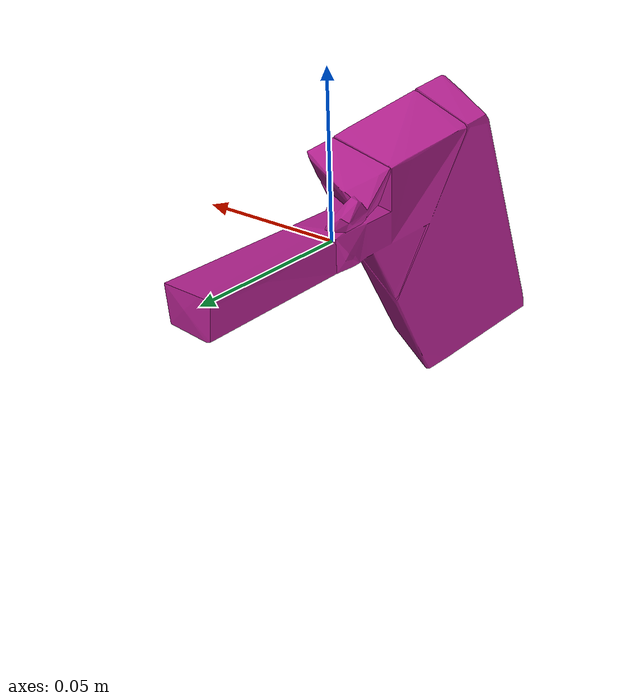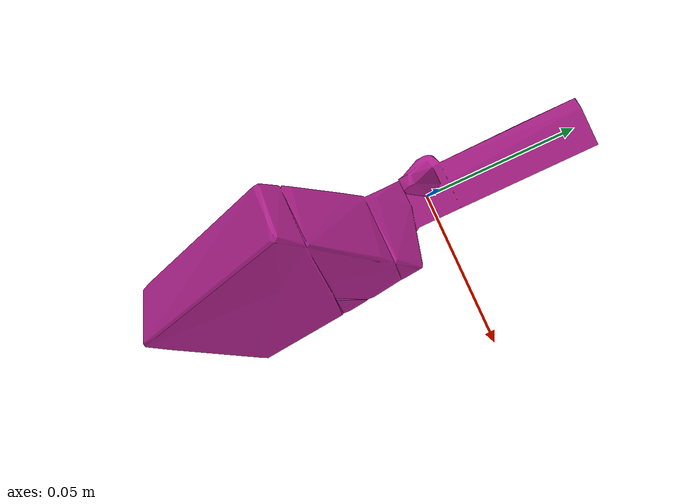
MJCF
<mujoco model="blob001">
    <compiler angle="radian" />
    <size njmax="500" nconmax="100" />
    <asset>
        <mesh name="001_coll" file="001_coll.stl" scale="0.009 0.009 0.009" />
    </asset>
    <worldbody>
        <geom type="mesh" rgba="0.7 0.13 0.56 1" mesh="001_coll" />
    </worldbody>
</mujoco>
